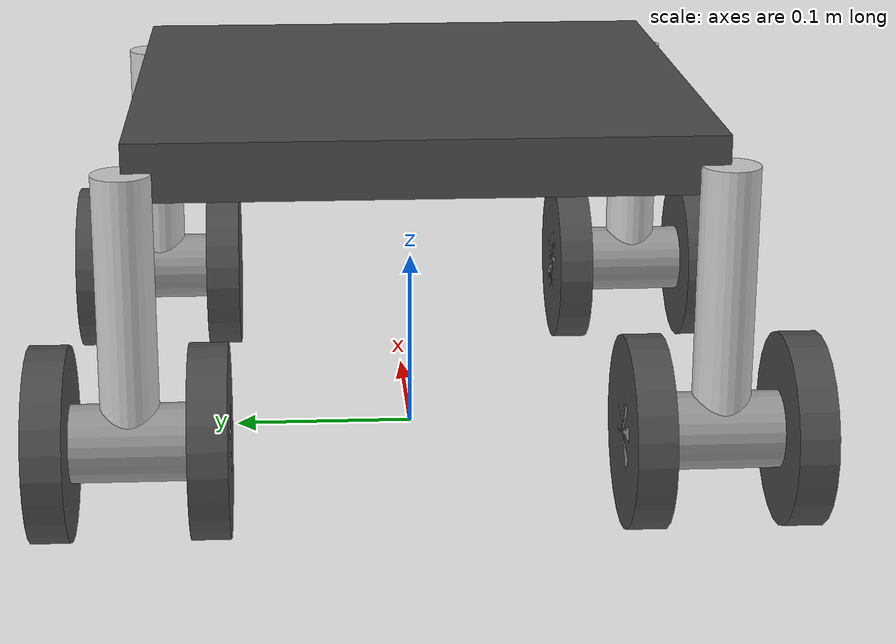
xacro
<?xml version="1.0"?>
<robot name="spur"

       xmlns:controller="http://playerstage.sourceforge.net/gazebo/xmlschema/#controller"
       xmlns:interface="http://playerstage.sourceforge.net/gazebo/xmlschema/#interface"
       xmlns:xacro="http://ros.org/wiki/xacro">

  <xacro:property name="ns" value="spur" />

  <!-- include materials -->
  <xacro:include filename="$(find spur_description)/urdf/materials.urdf.xacro" />
  <xacro:include filename="$(find spur_description)/urdf/spur.gazebo.xacro" />

  <!-- constants -->
  <property name="M_PI" value="3.1415926535897931" />

  <property name="wheel_radius" value="0.05" />
  <property name="wheel_width" value="0.02" />

  <property name="base_width" value="0.30" />
  <property name="base_height" value="0.030" />
  <property name="caster_offset_x" value="0.15" />
  <property name="caster_offset_y" value="0.15" />
  <property name="caster_offset_z" value="0.14" />

    <property name="mx160_effort" value="8.3" /> <!--  8.3 N/m ?? 45rpm -> 4.71 rad/s-->
  <property name="mx160_velocity" value="4.71" />
  <!-- inertia -->
  <macro name="cylinder_inertia" params="m r h">
    <inertia  ixx="${m*(3*r*r+h*h)/12}" ixy = "0" ixz = "0"
              iyy="${m*(3*r*r+h*h)/12}" iyz = "0" izz="${m*r*r/2}" />
  </macro>

  <macro name="box_inertia" params="m x y z">
    <inertia  ixx="${m*(y*y+z*z)/12}" ixy = "0" ixz = "0"
              iyy="${m*(z*z+x*x)/12}" iyz = "0" izz="${m*(x*x+y*y)/12}" />
  </macro>
  <!-- wheel -->
  <xacro:macro name="odom_wheel_tire" params="parent suffix offset">

    <joint name="${parent}_wheel_tire_${suffix}" type="fixed">
      <origin xyz="0 0 ${offset}" rpy="0 0 0" />
      <parent link="${parent}_wheel_link" />
      <child link="${parent}_wheel_tire_${suffix}_link" />
    </joint>

    <link name="${parent}_wheel_tire_${suffix}_link">
      <inertial>
        <mass value="1.0" />
        <origin xyz="0 0 0" />
        <cylinder_inertia m="1.0" r="${wheel_radius}" h="${wheel_width}" />
      </inertial>
      <visual>
        <geometry>
          <cylinder length="${wheel_width}" radius="${wheel_radius}"/>
        </geometry>
        <material name="DarkGrey" />
      </visual>
      <collision>
        <geometry>
          <cylinder length="${wheel_width}" radius="${wheel_radius}"/>
        </geometry>
      </collision>
    </link>

    <xacro:gazebo_tire_link name="${parent}_wheel_tire_${suffix}_link"  color="Black" />

  </xacro:macro>

  <xacro:macro name="odom_wheel_schaft" params="suffix rot_axis">

    <joint name="${suffix}_wheel_joint" type="continuous">
      <axis xyz="0 0 ${rot_axis}" />
      <limit effort="${mx160_effort*500}" velocity="${mx160_velocity*100}"/>
      <dynamics damping="0.0" friction="0.0" />
      <origin xyz="0 0 -${caster_offset_z}" rpy="-${M_PI/2} 0 0" />
      <parent link="${suffix}_rotation_link" />
      <child link="${suffix}_wheel_link" />
    </joint>

    <xacro:simple_transmission name="${suffix}_wheel_joint" interface="EffortJointInterface" />

    <link name="${suffix}_wheel_link">
      <inertial>
        <mass value="5.0" />
        <origin xyz="0 0 0" />
        <cylinder_inertia m="5.0" r="0.02" h="0.100" />
      </inertial>
      <visual>
        <geometry>
          <cylinder length="0.100" radius="0.02"/>
        </geometry>
        <material name="Grey" />
      </visual>
      <collision>
        <geometry>
          <cylinder length="${0.100 - wheel_width*2 - 0.01}" radius="0.02"/> <!-- avoid collision to tire -->
        </geometry>
      </collision>
    </link>

    <xacro:gazebo_tire_link name="${suffix}_wheel_link"  color="Grey" />

  </xacro:macro>

  <xacro:macro name="odom_wheel_rotate" params="suffix">
    <joint name="${suffix}_rotation_joint" type="revolute">
      <axis xyz="0 0 -1" />
      <limit lower="${-90*M_PI/180.0}" upper="${90*M_PI/180.0}" effort="${mx160_effort}" velocity="${mx160_velocity}"/>
      <dynamics damping="0.0" friction="0.0" />
      <xacro:insert_block name="origin" />
      <parent link="base_link"/>
      <child link="${suffix}_rotation_link" />
    </joint>

    <xacro:simple_transmission name="${suffix}_rotation_joint" interface="EffortJointInterface" />

    <link name="${suffix}_rotation_link">
      <inertial>
        <mass value="1.0" />
        <origin xyz="0 0 -${caster_offset_z/2}" rpy="0 0 0" />
        <cylinder_inertia m="1.0" r="0.015" h="${caster_offset_z}" />
      </inertial>
      <visual>
        <origin xyz="0 0 -${caster_offset_z/2}" rpy="0 0 0" />
        <geometry>
          <cylinder length="${caster_offset_z}" radius="0.015"/>
        </geometry>
        <material name="LightGrey" />
      </visual>
      <collision>
        <origin xyz="0 0 -${caster_offset_z/2}" rpy="0 0 0" />
        <geometry>
          <cylinder length="${caster_offset_z-0.05}" radius="0.015"/> <!-- avoid collision for wheel_schaft radius(0.02) -->
        </geometry>
      </collision>
    </link>

    <xacro:gazebo_base_link name="${suffix}_rotation_link"  color="White" />

  </xacro:macro>

  <xacro:macro name="odom_wheel" params="suffix *origin rot_axis">

    <xacro:odom_wheel_rotate suffix="${suffix}" />
    <xacro:odom_wheel_schaft suffix="${suffix}" rot_axis="${rot_axis}" />
    <xacro:odom_wheel_tire parent="${suffix}" suffix="l" offset="${0.05-wheel_width/2}"  />
    <xacro:odom_wheel_tire parent="${suffix}" suffix="r" offset="-${0.05-wheel_width/2}" />

  </xacro:macro>

  <!-- base -->
  <link name="base_link">
    <inertial>
      <mass value="10.0" />
      <origin xyz="0 0 0" />
      <box_inertia m="10.0" x="${base_width}" y="${base_width}" z="${base_height}" />
    </inertial>
    <visual>
      <origin xyz="0 0 0" rpy="0 0 0" />
      <geometry>
        <box size="${base_width} ${base_width} ${base_height}" />
      </geometry>
      <material name="DarkGrey" />
    </visual>
    <collision>
      <origin xyz="0 0 0" rpy="0 0 0" />
      <geometry>
        <box size="${base_width} ${base_width} ${base_height}" />
      </geometry>
    </collision>
  </link>

  <xacro:gazebo_base_link name="base_link"  color="Black" />

  <link name="base_footprint" />
  <joint name="footprint_to_base" type="fixed" >
    <origin xyz="0 0 0.190" rpy="0 0 0" />
    <parent link="base_footprint"/>
    <child link="base_link" />
  </joint>

  odom base
  <xacro:odom_wheel suffix="fl" rot_axis="1">
    <origin xyz="${caster_offset_x} ${caster_offset_y} 0.0" rpy="0 0 0" />
  </xacro:odom_wheel>
  <xacro:odom_wheel suffix="fr" rot_axis="-1">
    <origin xyz="${caster_offset_x} -${caster_offset_y} 0.0" rpy="0 0 0" />
  </xacro:odom_wheel>
  <xacro:odom_wheel suffix="bl" rot_axis="1">
    <origin xyz="-${caster_offset_x} ${caster_offset_y} 0.0" rpy="0 0 0" />
  </xacro:odom_wheel>
  <xacro:odom_wheel suffix="br" rot_axis="-1">
    <origin xyz="-${caster_offset_x} -${caster_offset_y} 0.0" rpy="0 0 0" />
  </xacro:odom_wheel>

</robot>
